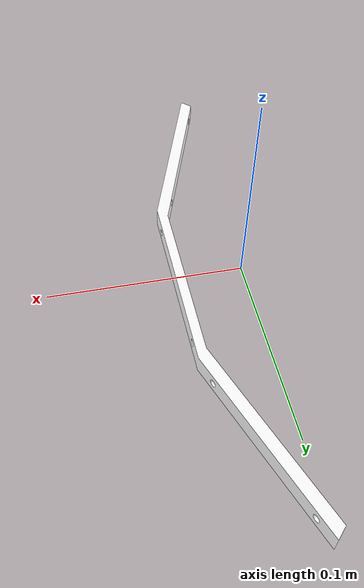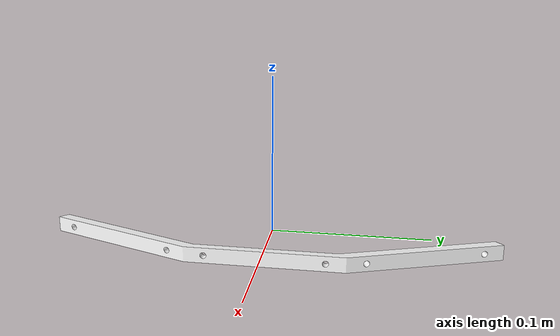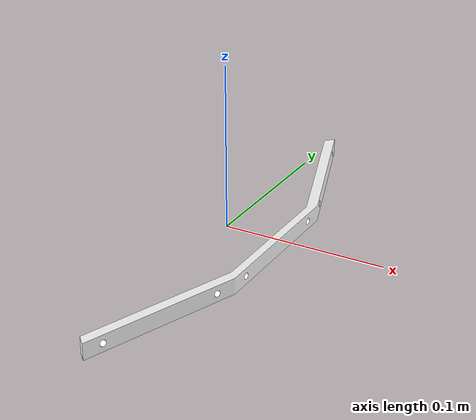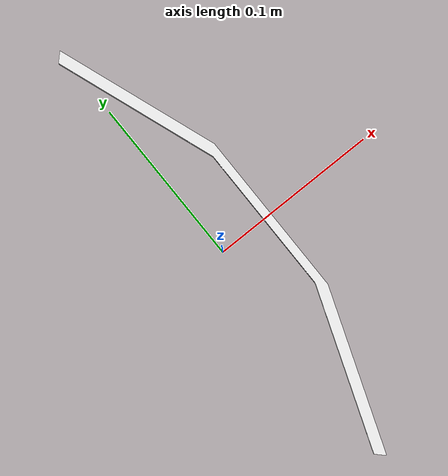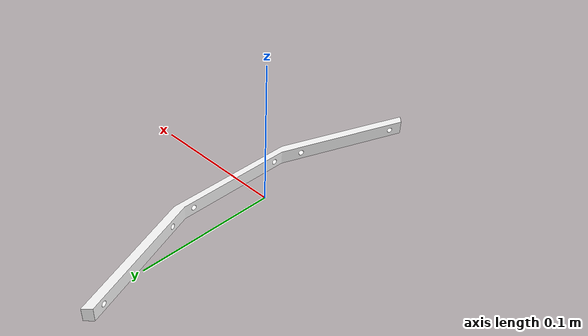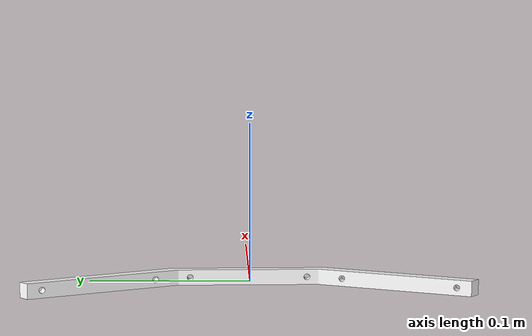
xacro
<?xml version="1.0"?>
<robot xmlns:xacro="http://www.ros.org/wiki/xacro" >

    <xacro:include filename="inertial_macros.xacro"/>

    <material name="white">
        <color rgba="1.0 1.0 1.0 1.0"/>
    </material>

    <!-- BASE LINK-->
    <link name="base_link"></link>

    <!-- BASE_FOOTPRINT LINK necessary for slam_toolbox-->

    <joint name="base_footprint_joint" type="fixed">
        <origin xyz="0.0 0.0 0.0" rpy="0.0 0.0 0.0"/>
        <parent link="base_link"/>
        <child link="base_footprint"/>
    </joint>

    <link name="base_footprint"></link>

    <joint name="base_chassis_joint" type="fixed">
        <origin xyz="0.0 0.0 0.0" rpy="0.0 0.0 0.0"/>
        <parent link="base_footprint"/>
        <child link="base_chassis"/>
    </joint>

    <link name="base_chassis">
        <visual name="">
            <origin xyz="0.0 0.0 0.0" rpy="0.0 0.0 0.0"/>
            <geometry>
                <mesh filename="package://perception_system_v2/meshes/soporte_160grad.dae"/>
            </geometry>
            <material name="white"/>
        </visual>
        <collision>
            <origin xyz="0.0 0.0 0.0" rpy="0.0 0.0 0.0"/>
            <geometry>
                <mesh filename="package://perception_system_v2/meshes/soporte_160grad.dae"/>
            </geometry>
        </collision>
        <!-- Todo -->
        <xacro:inertial_box mass="0.5" x="0.01" y="0.01" z="0.01">
            <origin xyz="0.0 0.0 0.0" rpy="0.0 0.0 0.0"/>
        </xacro:inertial_box>
    </link>

    <joint name="c1_joint" type="fixed">
        <origin xyz="0.03420 0.0 0.0" rpy="0.0 0.0 0.0"/>
        <parent link="base_chassis"/>
        <child link="oak1-d-base-frame"/>
    </joint>

    <link name="oak1-d-base-frame"></link>

    <joint name="c2_joint" type="fixed">
        <origin xyz="0.01710 0.09698 0.0" rpy="0.0 0.0 ${30*pi/180}"/>
        <parent link="base_chassis"/>
        <child link="oak2-d-base-frame"/>
    </joint>

    <link name="oak2-d-base-frame"></link>

    <joint name="c3_joint" type="fixed">
        <origin xyz="0.01710 -0.09698 0.0" rpy="0.0 0.0 ${330*pi/180}"/>
        <parent link="base_chassis"/>
        <child link="oak3-d-base-frame"/>
    </joint>

    <link name="oak3-d-base-frame"></link>

    <joint name="c4_joint" type="fixed">
        <origin xyz="-1.0 0.0 0.0" rpy="0.0 0.0 ${pi}"/>
        <parent link="base_chassis"/>
        <child link="oak4-d-base-frame"/>
    </joint>

    <link name="oak4-d-base-frame"></link>

</robot>
